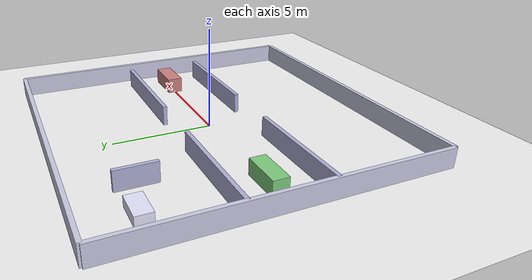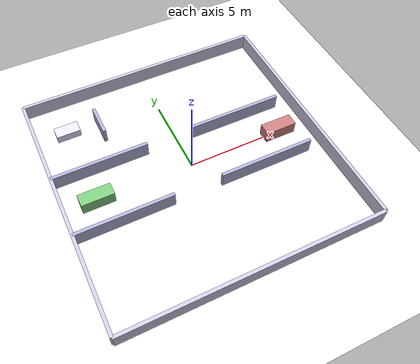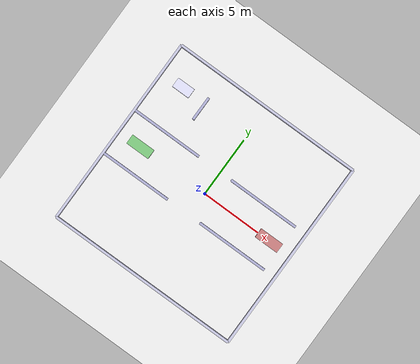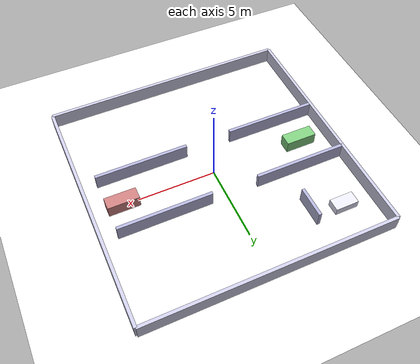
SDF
<?xml version="1.0"?>
<sdf version="1.6">
  <world name="hospital">

    <plugin
      filename="gz-sim-physics-system"
      name="gz::sim::systems::Physics">
    </plugin>
    <plugin
      filename="gz-sim-sensors-system"
      name="gz::sim::systems::Sensors">
      <render_engine>ogre2</render_engine>
    </plugin>
    <plugin
      filename="gz-sim-user-commands-system"
      name="gz::sim::systems::UserCommands">
    </plugin>
    <plugin
      filename="gz-sim-scene-broadcaster-system"
      name="gz::sim::systems::SceneBroadcaster">
    </plugin>

    <light type="directional" name="sun">
      <cast_shadows>true</cast_shadows>
      <pose>0 0 10 0 0 0</pose>
      <diffuse>0.8 0.8 0.8 1</diffuse>
      <specular>0.2 0.2 0.2 1</specular>
      <intensity>1</intensity>
      <direction>-0.5 0.1 -0.9</direction>
    </light>

    <model name="ground">
      <static>true</static>
      <link name="link">
        <collision name="col"><geometry><plane><normal>0 0 1</normal><size>100 100</size></plane></geometry></collision>
        <visual name="vis">
          <geometry><plane><normal>0 0 1</normal><size>100 100</size></plane></geometry>
          <material>
            <ambient>0.95 0.95 0.95 1</ambient>
            <diffuse>0.95 0.95 0.95 1</diffuse>
            <specular>0.1 0.1 0.1 1</specular>
          </material>
        </visual>
      </link>
    </model>

    <model name="outer_north"><static>true</static><pose>0 8 0.5 0 0 0</pose><link name="link"><collision name="col"><geometry><box><size>16 0.2 1</size></box></geometry></collision><visual name="vis"><geometry><box><size>16 0.2 1</size></box></geometry><material><ambient>0.8 0.8 0.9 1</ambient><diffuse>0.8 0.8 0.9 1</diffuse><specular>0.1 0.1 0.1 1</specular></material></visual></link></model>
    <model name="outer_south"><static>true</static><pose>0 -8 0.5 0 0 0</pose><link name="link"><collision name="col"><geometry><box><size>16 0.2 1</size></box></geometry></collision><visual name="vis"><geometry><box><size>16 0.2 1</size></box></geometry><material><ambient>0.8 0.8 0.9 1</ambient><diffuse>0.8 0.8 0.9 1</diffuse><specular>0.1 0.1 0.1 1</specular></material></visual></link></model>
    <model name="outer_east"><static>true</static><pose>8 0 0.5 0 0 0</pose><link name="link"><collision name="col"><geometry><box><size>0.2 16 1</size></box></geometry></collision><visual name="vis"><geometry><box><size>0.2 16 1</size></box></geometry><material><ambient>0.8 0.8 0.9 1</ambient><diffuse>0.8 0.8 0.9 1</diffuse><specular>0.1 0.1 0.1 1</specular></material></visual></link></model>
    <model name="outer_west"><static>true</static><pose>-8 0 0.5 0 0 0</pose><link name="link"><collision name="col"><geometry><box><size>0.2 16 1</size></box></geometry></collision><visual name="vis"><geometry><box><size>0.2 16 1</size></box></geometry><material><ambient>0.8 0.8 0.9 1</ambient><diffuse>0.8 0.8 0.9 1</diffuse><specular>0.1 0.1 0.1 1</specular></material></visual></link></model>

    <model name="corr_n_left"><static>true</static><pose>-5 2 0.5 0 0 0</pose><link name="link"><collision name="col"><geometry><box><size>6 0.2 1</size></box></geometry></collision><visual name="vis"><geometry><box><size>6 0.2 1</size></box></geometry><material><ambient>0.7 0.7 0.85 1</ambient><diffuse>0.7 0.7 0.85 1</diffuse><specular>0.1 0.1 0.1 1</specular></material></visual></link></model>
    <model name="corr_n_right"><static>true</static><pose>4 2 0.5 0 0 0</pose><link name="link"><collision name="col"><geometry><box><size>6 0.2 1</size></box></geometry></collision><visual name="vis"><geometry><box><size>6 0.2 1</size></box></geometry><material><ambient>0.7 0.7 0.85 1</ambient><diffuse>0.7 0.7 0.85 1</diffuse><specular>0.1 0.1 0.1 1</specular></material></visual></link></model>
    <model name="corr_s_left"><static>true</static><pose>-5 -2 0.5 0 0 0</pose><link name="link"><collision name="col"><geometry><box><size>6 0.2 1</size></box></geometry></collision><visual name="vis"><geometry><box><size>6 0.2 1</size></box></geometry><material><ambient>0.7 0.7 0.85 1</ambient><diffuse>0.7 0.7 0.85 1</diffuse><specular>0.1 0.1 0.1 1</specular></material></visual></link></model>
    <model name="corr_s_right"><static>true</static><pose>4 -2 0.5 0 0 0</pose><link name="link"><collision name="col"><geometry><box><size>6 0.2 1</size></box></geometry></collision><visual name="vis"><geometry><box><size>6 0.2 1</size></box></geometry><material><ambient>0.7 0.7 0.85 1</ambient><diffuse>0.7 0.7 0.85 1</diffuse><specular>0.1 0.1 0.1 1</specular></material></visual></link></model>

    <model name="div_n1_a"><static>true</static><pose>-4 5 0.5 0 0 0</pose><link name="link"><collision name="col"><geometry><box><size>0.2 2 1</size></box></geometry></collision><visual name="vis"><geometry><box><size>0.2 2 1</size></box></geometry><material><ambient>0.7 0.7 0.85 1</ambient><diffuse>0.7 0.7 0.85 1</diffuse><specular>0.1 0.1 0.1 1</specular></material></visual></link></model>

    <model name="bed1"><static>true</static><pose>-6 5.5 0.3 0 0 0</pose><link name="link"><collision name="col"><geometry><box><size>1.5 0.8 0.5</size></box></geometry></collision><visual name="vis"><geometry><box><size>1.5 0.8 0.5</size></box></geometry><material><ambient>0.9 0.9 1.0 1</ambient><diffuse>0.9 0.9 1.0 1</diffuse><specular>0.1 0.1 0.1 1</specular></material></visual></link></model>
    <model name="nurse_desk"><static>true</static><pose>-6 0 0.4 0 0 0</pose><link name="link"><collision name="col"><geometry><box><size>2 0.8 0.8</size></box></geometry></collision><visual name="vis"><geometry><box><size>2 0.8 0.8</size></box></geometry><material><ambient>0.5 0.8 0.5 1</ambient><diffuse>0.5 0.8 0.5 1</diffuse><specular>0.1 0.1 0.1 1</specular></material></visual></link></model>
    <model name="reception"><static>true</static><pose>6 0 0.4 0 0 0</pose><link name="link"><collision name="col"><geometry><box><size>2 0.8 0.8</size></box></geometry></collision><visual name="vis"><geometry><box><size>2 0.8 0.8</size></box></geometry><material><ambient>0.8 0.5 0.5 1</ambient><diffuse>0.8 0.5 0.5 1</diffuse><specular>0.1 0.1 0.1 1</specular></material></visual></link></model>

  </world>
</sdf>
